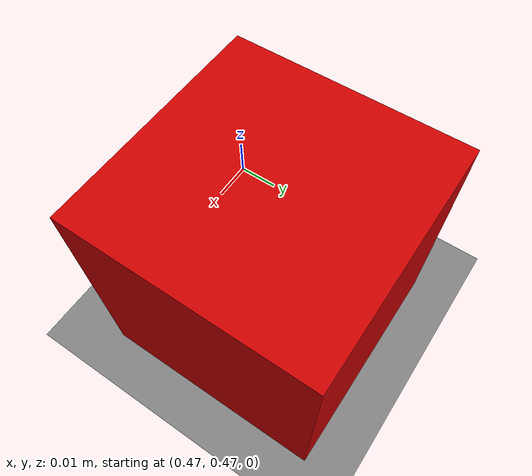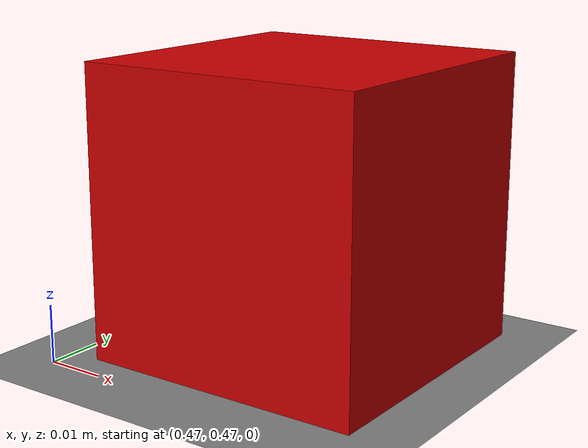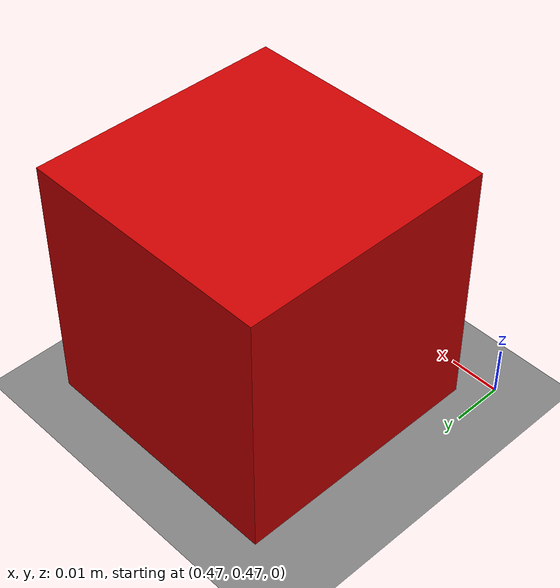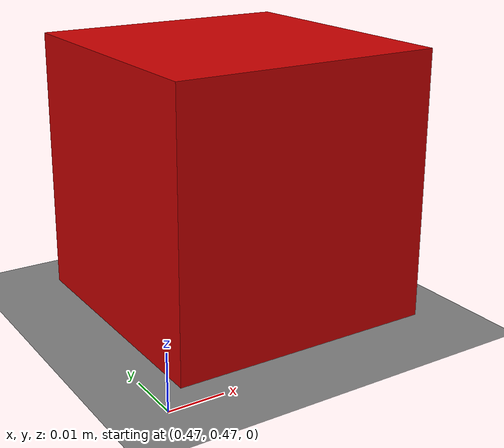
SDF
<?xml version="1.0" ?>
<sdf version="1.6">
  <world name="pick_and_place_world">

    <!-- ✅ Ground Plane 직접 정의 -->
    <model name="ground_plane">
      <static>true</static>
      <link name="link">
        <collision name="collision">
          <geometry>
            <plane>
              <normal>0 0 1</normal>
              <size>10 10</size>
            </plane>
          </geometry>
        </collision>
        <visual name="visual">
          <geometry>
            <plane>
              <normal>0 0 1</normal>
              <size>10 10</size>
            </plane>
          </geometry>
          <material>
            <ambient>0.5 0.5 0.5 1</ambient>
            <diffuse>0.5 0.5 0.5 1</diffuse>
          </material>
        </visual>
      </link>
    </model>

    <!-- ✅ Light 직접 정의 -->
    <light name="sun" type="directional">
      <cast_shadows>true</cast_shadows>
      <pose>0 0 10 0 0 0</pose>
      <diffuse>1 1 1 1</diffuse>
      <specular>0.1 0.1 0.1 1</specular>
      <attenuation>
        <range>1000</range>
        <constant>0.9</constant>
        <linear>0.01</linear>
        <quadratic>0.001</quadratic>
      </attenuation>
      <direction>-0.5 0.5 -1</direction>
    </light>

    <!-- ✅ 테스트용 빨간 박스 -->
    <model name="test_box">
      <pose>0.5 0.5 0.025 0 0 0</pose>
      <link name="link">
        <collision name="collision">
          <geometry>
            <box><size>0.05 0.05 0.05</size></box>
          </geometry>
        </collision>
        <visual name="visual">
          <geometry>
            <box><size>0.05 0.05 0.05</size></box>
          </geometry>
          <material>
            <ambient>0.8 0 0 1</ambient>
            <diffuse>0.8 0 0 1</diffuse>
          </material>
        </visual>
      </link>
    </model>

  </world>
</sdf>
